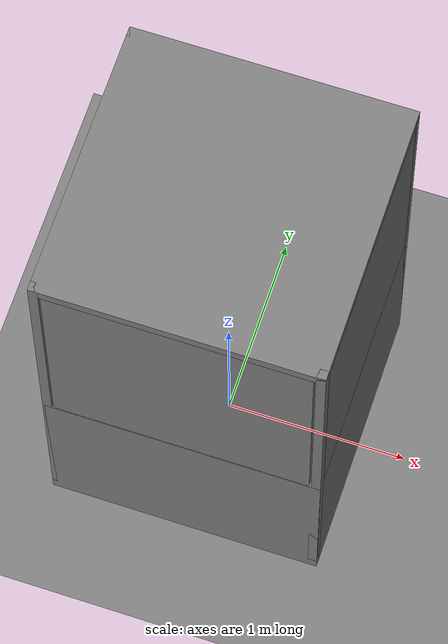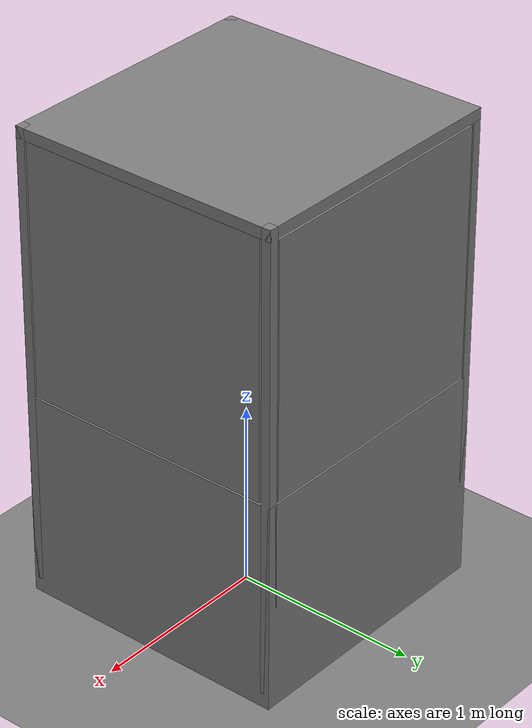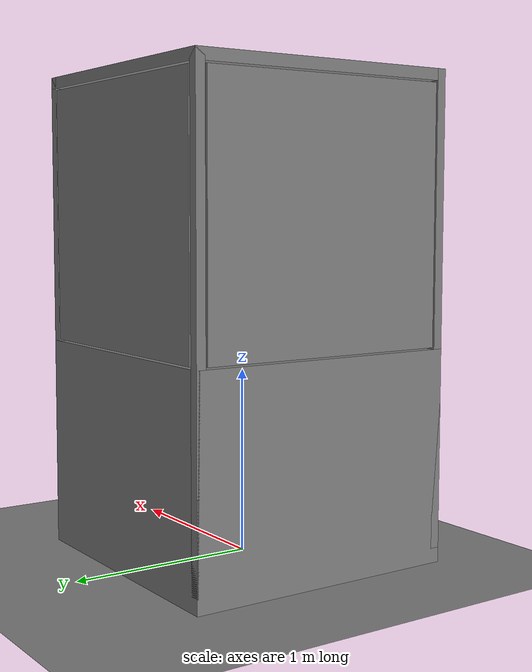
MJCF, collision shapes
<mujoco model="rack_insert_world">
  <compiler angle="radian" />
  <option gravity="0 0 -9.8" magnetic="5.5645e-06 2.28758e-05 -4.23884e-05" />
  <visual>
    <headlight ambient="0 0 0" diffuse="0 0 0" specular="0 0 0" />
  </visual>
  <default>
    <default class="world_default" />
    <default class="cable_default">
      <joint damping="0.2" />
    </default>
    <default class="sc_port_default">
      <geom friction="0.5 0.5" />
    </default>
    <default class="nic_card_default">
      <geom friction="0.1 0.005 0.1" />
    </default>
  </default>
  <asset>
    <texture type="2d" colorspace="linear" name="texture_40c09d03e70381a6858aaba3470a3c41133384b4031fa9131cbb5f4dc5cd3986_floor_visual_Plane" file="40c09d03e70381a6858aaba3470a3c41133384b4031fa9131cbb5f4dc5cd3986_floor_visual_b3a94635-54d6beff6424435d3828cb4c8a1278d9ea3964b0.png" />
    <texture type="2d" colorspace="linear" name="texture_905de86c942092710a3b3b7c801a4a971c55ce1db8e8e66de2d222bccbf68920_sc_plug_visual_merged_0" file="905de86c942092710a3b3b7c801a4a971c55ce1db8e8e66de2d222bccbf68920_sc_plug_visual_5875f865-48f62b2f4840d852c7f39a01e6c183037dc1485b.png" />
    <texture type="2d" colorspace="linear" name="texture_98c00f0bc914fd28942a5b5b497872ae817e62fdc7c7810ecaa8069a9692ceaf_lc_plug_visual_merged_0" file="98c00f0bc914fd28942a5b5b497872ae817e62fdc7c7810ecaa8069a9692ceaf_lc_plug_visual_03dabf32-0905e8a8aa368516e682f6ec84258100cdb4efef.png" />
    <texture type="2d" colorspace="linear" name="texture_bac71237ef67393fcec4e1a5deb385aa5fe0d294b7e1711efc530aa1463ef5d6_sfp_module_visual_Body.005" file="bac71237ef67393fcec4e1a5deb385aa5fe0d294b7e1711efc530aa1463ef5d6_sfp_module_visual_8fc63b58-7471eafc55dcb668ae68adfe70a147b363ba3be9.png" />
    <texture type="2d" colorspace="linear" name="texture_bac71237ef67393fcec4e1a5deb385aa5fe0d294b7e1711efc530aa1463ef5d6_sfp_module_visual_Body.005_1" file="bac71237ef67393fcec4e1a5deb385aa5fe0d294b7e1711efc530aa1463ef5d6_sfp_module_visual_1f09e86a-a4dc4a72bd6e778067310898a5c179607fd78966.png" />
    <material name="material_e35a3160deff872a7475b59ee7dfb4969f85c5fc103de22f82442b320b077c85_enclosure_visual_V1014952.001" class="world_default" shininess="30" rgba="0.290196 0.290196 0.290196 1" />
    <material name="material_e35a3160deff872a7475b59ee7dfb4969f85c5fc103de22f82442b320b077c85_enclosure_visual_V1014952.001_1" class="world_default" shininess="30" rgba="0.129412 0.129412 0.133333 1" />
    <material name="material_e35a3160deff872a7475b59ee7dfb4969f85c5fc103de22f82442b320b077c85_light_visual_Plane.001" class="world_default" shininess="30" rgba="0.5 0.5 0.5 1" />
    <material name="material_40c09d03e70381a6858aaba3470a3c41133384b4031fa9131cbb5f4dc5cd3986_floor_visual_Plane" class="world_default" texture="texture_40c09d03e70381a6858aaba3470a3c41133384b4031fa9131cbb5f4dc5cd3986_floor_visual_Plane" shininess="30" rgba="0.5 0.5 0.5 1" />
    <material name="material_40c09d03e70381a6858aaba3470a3c41133384b4031fa9131cbb5f4dc5cd3986_walls_visual_Curve.001" class="world_default" shininess="30" rgba="0.0196078 0.0196078 0.0196078 1" />
    <material name="material_40c09d03e70381a6858aaba3470a3c41133384b4031fa9131cbb5f4dc5cd3986_walls_visual_merged_1" class="world_default" shininess="30" rgba="0.262745 0.262745 0.262745 1" />
    <material name="material_40c09d03e70381a6858aaba3470a3c41133384b4031fa9131cbb5f4dc5cd3986_walls_visual_Plane.003_1" class="world_default" shininess="30" rgba="0.8 0.8 0.8 1" />
    <material name="material_40c09d03e70381a6858aaba3470a3c41133384b4031fa9131cbb5f4dc5cd3986_walls_visual_Plane.002" class="world_default" shininess="30" rgba="0.207843 0.207843 0.207843 1" />
    <material name="material_905de86c942092710a3b3b7c801a4a971c55ce1db8e8e66de2d222bccbf68920_sc_plug_visual_merged_0" class="world_default" texture="texture_905de86c942092710a3b3b7c801a4a971c55ce1db8e8e66de2d222bccbf68920_sc_plug_visual_merged_0" shininess="30" rgba="0.5 0.5 0.5 1" />
    <material name="material_98c00f0bc914fd28942a5b5b497872ae817e62fdc7c7810ecaa8069a9692ceaf_lc_plug_visual_merged_0" class="world_default" texture="texture_98c00f0bc914fd28942a5b5b497872ae817e62fdc7c7810ecaa8069a9692ceaf_lc_plug_visual_merged_0" shininess="30" rgba="0.5 0.5 0.5 1" />
    <material name="material_bac71237ef67393fcec4e1a5deb385aa5fe0d294b7e1711efc530aa1463ef5d6_sfp_module_visual_Body.005" class="world_default" texture="texture_bac71237ef67393fcec4e1a5deb385aa5fe0d294b7e1711efc530aa1463ef5d6_sfp_module_visual_Body.005" shininess="30" rgba="0.5 0.5 0.5 1" />
    <material name="material_bac71237ef67393fcec4e1a5deb385aa5fe0d294b7e1711efc530aa1463ef5d6_sfp_module_visual_Body.005_1" class="world_default" texture="texture_bac71237ef67393fcec4e1a5deb385aa5fe0d294b7e1711efc530aa1463ef5d6_sfp_module_visual_Body.005_1" shininess="30" rgba="0.5 0.5 0.5 1" />
    <material name="material_7689a9b747d6b156977e79b2206b5e29540e3d66cde22b2879e5c8aaf9f30d90_base_visual_ISO_4762_-_M3_x_8.019" class="world_default" shininess="30" rgba="0.0352941 0.0352941 0.0313726 1" />
    <material name="material_7689a9b747d6b156977e79b2206b5e29540e3d66cde22b2879e5c8aaf9f30d90_base_visual_ISO_4762_-_M3_x_8.019_1" class="world_default" shininess="30" rgba="0.0313726 0.0313726 0.0313726 1" />
    <material name="material_7689a9b747d6b156977e79b2206b5e29540e3d66cde22b2879e5c8aaf9f30d90_base_visual_ISO_4762_-_M3_x_8.019_2" class="world_default" shininess="30" rgba="0.215686 0 0.215686 1" />
    <mesh name="e35a3160deff872a7475b59ee7dfb4969f85c5fc103de22f82442b320b077c85_enclosure_visual_V1014952.001" class="world_default" content_type="model/obj" file="e35a3160deff872a7475b59ee7dfb4969f85c5fc103de22f82442b320b077c85_enclosure_visual_V1014952.001-c990efe7b9dfe87aa065fd6eb3960ce051ae2aef.obj" inertia="shell" />
    <mesh name="e35a3160deff872a7475b59ee7dfb4969f85c5fc103de22f82442b320b077c85_enclosure_visual_V1014952.001_1" class="world_default" content_type="model/obj" file="e35a3160deff872a7475b59ee7dfb4969f85c5fc103de22f82442b320b077c85_enclosure_visual_V1014952.001_1-807e07de06af157c84b994a232617507a7059420.obj" inertia="shell" />
    <mesh name="e35a3160deff872a7475b59ee7dfb4969f85c5fc103de22f82442b320b077c85_light_visual_Plane.001" class="world_default" content_type="model/obj" file="e35a3160deff872a7475b59ee7dfb4969f85c5fc103de22f82442b320b077c85_light_visual_Plane.001-a8a774a80bc239d73769a498eae528b206eebcb0.obj" inertia="shell" />
    <mesh name="40c09d03e70381a6858aaba3470a3c41133384b4031fa9131cbb5f4dc5cd3986_floor_visual_Plane" class="world_default" content_type="model/obj" file="40c09d03e70381a6858aaba3470a3c41133384b4031fa9131cbb5f4dc5cd3986_floor_visual_Plane-4dc7f6150ad7c239769a0860a01efb2015657aea.obj" inertia="shell" />
    <mesh name="40c09d03e70381a6858aaba3470a3c41133384b4031fa9131cbb5f4dc5cd3986_walls_visual_Curve.001" class="world_default" content_type="model/obj" file="40c09d03e70381a6858aaba3470a3c41133384b4031fa9131cbb5f4dc5cd3986_walls_visual_Curve.001-4d7c79ac2e958832fdb15589262141ca1b80d3a5.obj" inertia="shell" />
    <mesh name="40c09d03e70381a6858aaba3470a3c41133384b4031fa9131cbb5f4dc5cd3986_walls_visual_merged_1" class="world_default" content_type="model/obj" file="40c09d03e70381a6858aaba3470a3c41133384b4031fa9131cbb5f4dc5cd3986_walls_visual_merged_1-359a22140d528747936e80bedf90e1437a177a9f.obj" inertia="shell" />
    <mesh name="40c09d03e70381a6858aaba3470a3c41133384b4031fa9131cbb5f4dc5cd3986_walls_visual_Plane.003_1" class="world_default" content_type="model/obj" file="40c09d03e70381a6858aaba3470a3c41133384b4031fa9131cbb5f4dc5cd3986_walls_visual_Plane.003_1-cd05ed21fa19a2784fb772d7519abf7c31c8b85f.obj" inertia="shell" />
    <mesh name="40c09d03e70381a6858aaba3470a3c41133384b4031fa9131cbb5f4dc5cd3986_walls_visual_Plane.002" class="world_default" content_type="model/obj" file="40c09d03e70381a6858aaba3470a3c41133384b4031fa9131cbb5f4dc5cd3986_walls_visual_Plane.002-ee4f781765eec46c2256d941981732d4b1857f24.obj" inertia="shell" />
    <mesh name="905de86c942092710a3b3b7c801a4a971c55ce1db8e8e66de2d222bccbf68920_sc_plug_visual_merged_0" class="world_default" content_type="model/obj" file="905de86c942092710a3b3b7c801a4a971c55ce1db8e8e66de2d222bccbf68920_sc_plug_visual_merged_0-67f94accf247f722dd4954d7448d7956402901f2.obj" inertia="shell" />
    <mesh name="98c00f0bc914fd28942a5b5b497872ae817e62fdc7c7810ecaa8069a9692ceaf_lc_plug_visual_merged_0" class="world_default" content_type="model/obj" file="98c00f0bc914fd28942a5b5b497872ae817e62fdc7c7810ecaa8069a9692ceaf_lc_plug_visual_merged_0-fdaf59710fc3cc118a7df05add4ff4205edda4ef.obj" inertia="shell" />
    <mesh name="bac71237ef67393fcec4e1a5deb385aa5fe0d294b7e1711efc530aa1463ef5d6_sfp_module_visual_Body.005" class="world_default" content_type="model/obj" file="bac71237ef67393fcec4e1a5deb385aa5fe0d294b7e1711efc530aa1463ef5d6_sfp_module_visual_Body.005-f93147e1e403de321fb70c06a4b1e00f20feb9fd.obj" inertia="shell" />
    <mesh name="bac71237ef67393fcec4e1a5deb385aa5fe0d294b7e1711efc530aa1463ef5d6_sfp_module_visual_Body.005_1" class="world_default" content_type="model/obj" file="bac71237ef67393fcec4e1a5deb385aa5fe0d294b7e1711efc530aa1463ef5d6_sfp_module_visual_Body.005_1-4af964a95522e2593eb6381eca4f09ef239782c7.obj" inertia="shell" />
    <mesh name="7689a9b747d6b156977e79b2206b5e29540e3d66cde22b2879e5c8aaf9f30d90_base_visual_ISO_4762_-_M3_x_8.019" class="world_default" content_type="model/obj" file="7689a9b747d6b156977e79b2206b5e29540e3d66cde22b2879e5c8aaf9f30d90_base_visual_ISO_4762_-_M3_x_8.019-f814bb518c42769543ab6246809f3fe4af5c2b64.obj" inertia="shell" />
    <mesh name="7689a9b747d6b156977e79b2206b5e29540e3d66cde22b2879e5c8aaf9f30d90_base_visual_ISO_4762_-_M3_x_8.019_1" class="world_default" content_type="model/obj" file="7689a9b747d6b156977e79b2206b5e29540e3d66cde22b2879e5c8aaf9f30d90_base_visual_ISO_4762_-_M3_x_8.019_1-0b276ba9910a7642121235b62d2afc47c3995782.obj" inertia="shell" />
    <mesh name="7689a9b747d6b156977e79b2206b5e29540e3d66cde22b2879e5c8aaf9f30d90_base_visual_ISO_4762_-_M3_x_8.019_2" class="world_default" content_type="model/obj" file="7689a9b747d6b156977e79b2206b5e29540e3d66cde22b2879e5c8aaf9f30d90_base_visual_ISO_4762_-_M3_x_8.019_2-7b96569be9572803417c5650ee83c9c883b44191.obj" inertia="shell" />
  </asset>
  <worldbody>
    <light name="enclosure_light" class="world_default" pos="0 0 2.5" dir="0 0 -1" intensity="0.4" range="2" attenuation="1 0.01 0.001" cutoff="114.592" exponent="0.993023" diffuse="1 1 1" specular="0.1 0.1 0.1" />
    <light name="ceiling_01" class="world_default" pos="2 2 6" dir="0 0 -1" intensity="2" range="9" castshadow="false" attenuation="1 0.01 0.001" cutoff="360" diffuse="1 1 1" specular="0.1 0.1 0.1" />
    <light name="ceiling_02" class="world_default" pos="-2 -2 6" dir="0 0 -1" intensity="2" range="9" castshadow="false" attenuation="1 0.01 0.001" cutoff="360" diffuse="1 1 1" specular="0.1 0.1 0.1" />
    <body name="enclosure_link">
      <inertial pos="0 0 0" mass="1" diaginertia="1 1 1" />
      <geom name="v1015026001_collider_box" class="world_default" size="0.75 0.569492 0.75" pos="-0.010998 0.009283 0.569706" quat="1.22475e-07 -1.22474e-07 0.707107 0.707107" type="box" group="3" />
      <geom name="v1015028001_collider_box" class="world_default" size="0.0254 0.0254 1.25" pos="0.713602 0.733883 1.3292" quat="1.73205e-07 0 0 -1" type="box" group="3" />
      <geom name="v1015013001_collider_box" class="world_default" size="0.0304 0.75 0.75" pos="-0.010998 0.009283 2.5488" quat="0.707107 0 -0.707107 0" type="box" group="3" />
      <geom name="v1015027_collider_box" class="world_default" size="0.0254 0.0254 1.25" pos="-0.735598 0.733883 1.3292" quat="1.73205e-07 0 0 -1" type="box" group="3" />
      <geom name="v1015029_collider_box" class="world_default" size="0.0254 0.0254 1.25" pos="-0.735598 -0.715317 1.3292" quat="0 1.73205e-07 -1 -1.73205e-07" type="box" group="3" />
      <geom name="v1015030_collider_box" class="world_default" size="0.0254 0.0254 1.25" pos="0.713602 -0.715317 1.3292" quat="1.73205e-07 0 0 -1" type="box" group="3" />
      <geom name="enclosure_visual" class="world_default" type="mesh" contype="0" conaffinity="0" material="material_e35a3160deff872a7475b59ee7dfb4969f85c5fc103de22f82442b320b077c85_enclosure_visual_V1014952.001" mesh="e35a3160deff872a7475b59ee7dfb4969f85c5fc103de22f82442b320b077c85_enclosure_visual_V1014952.001" />
      <geom name="enclosure_visual_0" class="world_default" type="mesh" contype="0" conaffinity="0" material="material_e35a3160deff872a7475b59ee7dfb4969f85c5fc103de22f82442b320b077c85_enclosure_visual_V1014952.001_1" mesh="e35a3160deff872a7475b59ee7dfb4969f85c5fc103de22f82442b320b077c85_enclosure_visual_V1014952.001_1" />
      <geom name="light_visual" class="world_default" type="mesh" contype="0" conaffinity="0" material="material_e35a3160deff872a7475b59ee7dfb4969f85c5fc103de22f82442b320b077c85_light_visual_Plane.001" mesh="e35a3160deff872a7475b59ee7dfb4969f85c5fc103de22f82442b320b077c85_light_visual_Plane.001" />
    </body>
    <body name="enclosure_walls_link">
      <inertial pos="0 0 0" mass="1" diaginertia="1 1 1" />
      <geom name="v1015062006_collider_box" class="world_default" size="0.0250005 0.6796 0.6892" pos="-0.010998 0.734284 1.8288" quat="0.5 0.5 -0.5 -0.5" type="box" group="3" />
      <geom name="v1015062005_collider_box" class="world_default" size="0.6892 0.6796 0.025" pos="-0.735998 0.009283 1.8288" quat="0.5 0.5 -0.5 -0.5" type="box" group="3" />
      <geom name="v1015062007_collider_box" class="world_default" size="0.025 0.6846 0.6892" pos="-0.010998 -0.715717 1.8338" quat="0.5 0.5 -0.5 -0.5" type="box" group="3" />
      <geom name="v1015062008_collider_box" class="world_default" size="0.6892 0.6846 0.025" pos="0.714002 0.009283 1.8338" quat="0.5 0.5 -0.5 -0.5" type="box" group="3" />
    </body>
    <body name="floor_link">
      <inertial pos="0 0 0" mass="1" diaginertia="1 1 1" />
      <geom name="floor_cylinder" class="world_default" size="5 5 1" type="plane" group="3" />
      <geom name="floor_visual" class="world_default" type="mesh" contype="0" conaffinity="0" material="material_40c09d03e70381a6858aaba3470a3c41133384b4031fa9131cbb5f4dc5cd3986_floor_visual_Plane" mesh="40c09d03e70381a6858aaba3470a3c41133384b4031fa9131cbb5f4dc5cd3986_floor_visual_Plane" />
      <geom name="walls_visual" class="world_default" type="mesh" contype="0" conaffinity="0" material="material_40c09d03e70381a6858aaba3470a3c41133384b4031fa9131cbb5f4dc5cd3986_walls_visual_Curve.001" mesh="40c09d03e70381a6858aaba3470a3c41133384b4031fa9131cbb5f4dc5cd3986_walls_visual_Curve.001" />
      <geom name="walls_visual_0" class="world_default" type="mesh" contype="0" conaffinity="0" material="material_40c09d03e70381a6858aaba3470a3c41133384b4031fa9131cbb5f4dc5cd3986_walls_visual_merged_1" mesh="40c09d03e70381a6858aaba3470a3c41133384b4031fa9131cbb5f4dc5cd3986_walls_visual_merged_1" />
      <geom name="walls_visual_1" class="world_default" type="mesh" contype="0" conaffinity="0" material="material_40c09d03e70381a6858aaba3470a3c41133384b4031fa9131cbb5f4dc5cd3986_walls_visual_Plane.003_1" mesh="40c09d03e70381a6858aaba3470a3c41133384b4031fa9131cbb5f4dc5cd3986_walls_visual_Plane.003_1" />
      <geom name="walls_visual_2" class="world_default" type="mesh" contype="0" conaffinity="0" material="material_40c09d03e70381a6858aaba3470a3c41133384b4031fa9131cbb5f4dc5cd3986_walls_visual_Plane.002" mesh="40c09d03e70381a6858aaba3470a3c41133384b4031fa9131cbb5f4dc5cd3986_walls_visual_Plane.002" />
    </body>
    <body name="task_board_base_link" pos="0.15 -0.2 1.14" quat="4.63268e-05 0 0 1">
      <inertial pos="0 0 0" mass="5" diaginertia="0.1 0.1 0.1" />
      <site name="socket_mouth" pos="-0.09094673 0.02949957 0.0165" size="0.004" rgba="0 1 0 1" />
      <site name="socket_bottom" pos="-0.09095773 0.02949957 0.03014" size="0.004" rgba="0 0 1 1" />
      <geom name="task_board_base_link_fixed_joint_lump__v1015083001_collider_box_left_collision" class="world_default" size="0.15 0.114 0.0045" pos="0 -0.1 0.0075" type="box" group="3" />
      <geom name="task_board_base_link_fixed_joint_lump__v1015083001_collider_right_collision_1" class="world_default" size="0.15 0.0635 0.0045" pos="0 0.149 0.0075" type="box" group="3" />
      <geom name="task_board_base_link_fixed_joint_lump__v1015083001_collider_mid_collision_2" class="world_default" size="0.07 0.006 0.0045" pos="-0.075 0.05 0.0075" type="box" group="3" />
      <geom name="task_board_base_link_fixed_joint_lump__v1015083001_collider_bottom_collision_3" class="world_default" size="0.0825 0.2125 0.0045" pos="0.068 0 0.0075" type="box" group="3" />
      <geom name="task_board_base_link_fixed_joint_lump__v1015083001_collider_top_collision_4" class="world_default" size="0.0075 0.2125 0.0045" pos="-0.143 0 0.0075" type="box" group="3" />
      <geom name="task_board_base_link_fixed_joint_lump__base_visual_visual" class="world_default" type="mesh" contype="0" conaffinity="0" material="material_7689a9b747d6b156977e79b2206b5e29540e3d66cde22b2879e5c8aaf9f30d90_base_visual_ISO_4762_-_M3_x_8.019" mesh="7689a9b747d6b156977e79b2206b5e29540e3d66cde22b2879e5c8aaf9f30d90_base_visual_ISO_4762_-_M3_x_8.019" />
      <geom name="task_board_base_link_fixed_joint_lump__base_visual_visual_0" class="world_default" type="mesh" contype="0" conaffinity="0" material="material_7689a9b747d6b156977e79b2206b5e29540e3d66cde22b2879e5c8aaf9f30d90_base_visual_ISO_4762_-_M3_x_8.019_1" mesh="7689a9b747d6b156977e79b2206b5e29540e3d66cde22b2879e5c8aaf9f30d90_base_visual_ISO_4762_-_M3_x_8.019_1" />
      <geom name="task_board_base_link_fixed_joint_lump__base_visual_visual_1" class="world_default" type="mesh" contype="0" conaffinity="0" material="material_7689a9b747d6b156977e79b2206b5e29540e3d66cde22b2879e5c8aaf9f30d90_base_visual_ISO_4762_-_M3_x_8.019_2" mesh="7689a9b747d6b156977e79b2206b5e29540e3d66cde22b2879e5c8aaf9f30d90_base_visual_ISO_4762_-_M3_x_8.019_2" />
    </body>
    <body name="static_link">
      <inertial pos="0 0 0" mass="1" diaginertia="1 1 1" />
    </body>
    <body name="static_link_0">
      <inertial pos="0 0 0" mass="1" diaginertia="1 1 1" />
    </body>
  </worldbody>
</mujoco>
